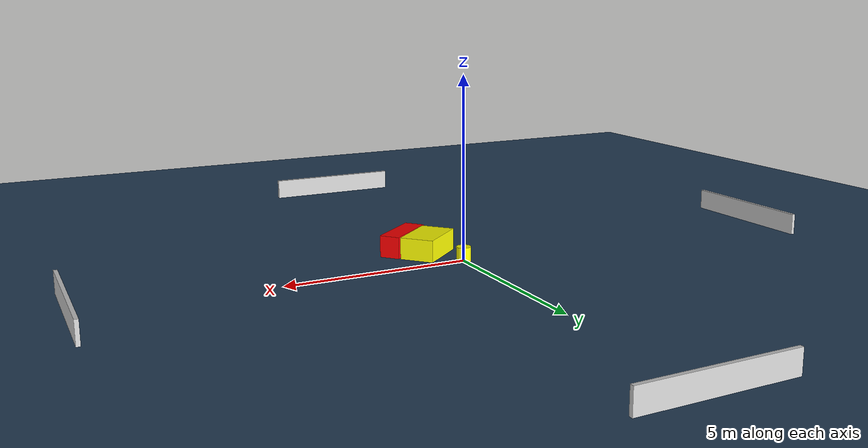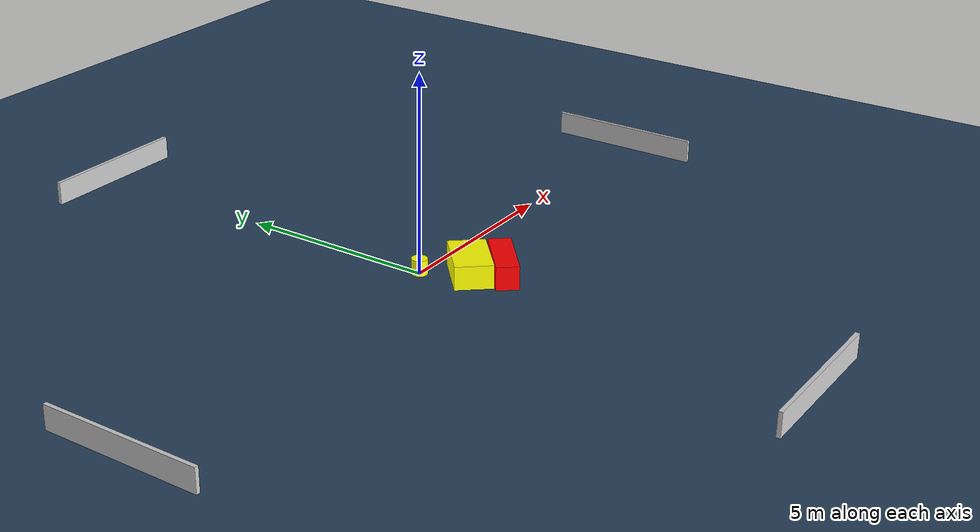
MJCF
<?xml version="1.0" ?>
<mujoco model="generated_environment">
  <option timestep="0.01" integrator="RK4" cone="elliptic"/>
  <default>
    <geom density="1"/>
  </default>
  <asset>
    <texture builtin="gradient" height="3072" name="skybox" rgb1="0.3 0.5 0.7" rgb2="0 0 0" type="skybox" width="512"/>
    <texture builtin="checker" height="300" name="groundplane" rgb1="0.2 0.3 0.4" rgb2="0.1 0.2 0.3" type="2d" width="300"/>
    <material name="groundplane" reflectance="0.2" texrepeat="5 5" texture="groundplane"/>
  </asset>
  <worldbody>
    <light dir="0 0 -1" directional="true" pos="0 0 1.5"/>
    <geom condim="3" friction="0.5 0.005 0.001" material="groundplane" name="floor" pos="0 0 0" size="0 0 0.05" type="plane"/>
    <body name="walls">
      <geom name="wall_1" condim="4" pos="-10.0 0.0 0.3" rgba="0.800000011920929 0.800000011920929 0.800000011920929 1.0" size="0.05 2.0 0.3" type="box"/>
      <geom name="wall_2" condim="4" pos="10.0 0.0 0.3" rgba="0.800000011920929 0.800000011920929 0.800000011920929 1.0" size="0.05 2.0 0.3" type="box"/>
      <geom name="wall_3" condim="4" pos="0.0 -10.0 0.3" rgba="0.800000011920929 0.800000011920929 0.800000011920929 1.0" size="2.0 0.05 0.3" type="box"/>
      <geom name="wall_4" condim="4" pos="0.0 10.0 0.3" rgba="0.800000011920929 0.800000011920929 0.800000011920929 1.0" size="2.0 0.05 0.3" type="box"/>
    </body>
    <body name="robot">
      <joint name="joint_x" type="slide" pos="0 0 0" axis="1 0 0"/>
      <joint name="joint_y" type="slide" pos="0 0 0" axis="0 1 0"/>
      <geom name="robot" type="cylinder" pos="0.0 0.0 0.2" size="0.2 0.2 0.0" mass="5.0" friction="1.0 0.005 0.0001" condim="4" rgba="1.0 1.0 0.0 1.0"/>
    </body>
    <body name="obstacle_1_movable">
      <geom name="obstacle_1_movable" condim="4" pos="0.5743377682662795 -1.0534170538848973 0.3" euler="0 0 310.93618217889036" friction="0.0 0.005 0.001" rgba="1.0 1.0 0.0 1.0" size="0.47004442410980024 0.7373523132919613 0.3" type="box" mass="0.1"/>
      <joint type="free"/>
    </body>
    <body name="obstacle_2_static">
      <geom name="obstacle_2_static" condim="4" pos="1.0433271821737813 -1.6805582659174865 0.3" euler="0 0 219.61863379338848" friction="0.0 0.005 0.001" rgba="1.0 0.0 0.0 1.0" size="0.7987452743921963 0.2794339081835707 0.3" type="box"/>
    </body>
  </worldbody>
  <actuator>
    <motor name="actuator_x" joint="joint_x" gear="1" ctrlrange="-1 1"/>
    <motor name="actuator_y" joint="joint_y" gear="1" ctrlrange="-1 1"/>
  </actuator>
</mujoco>
